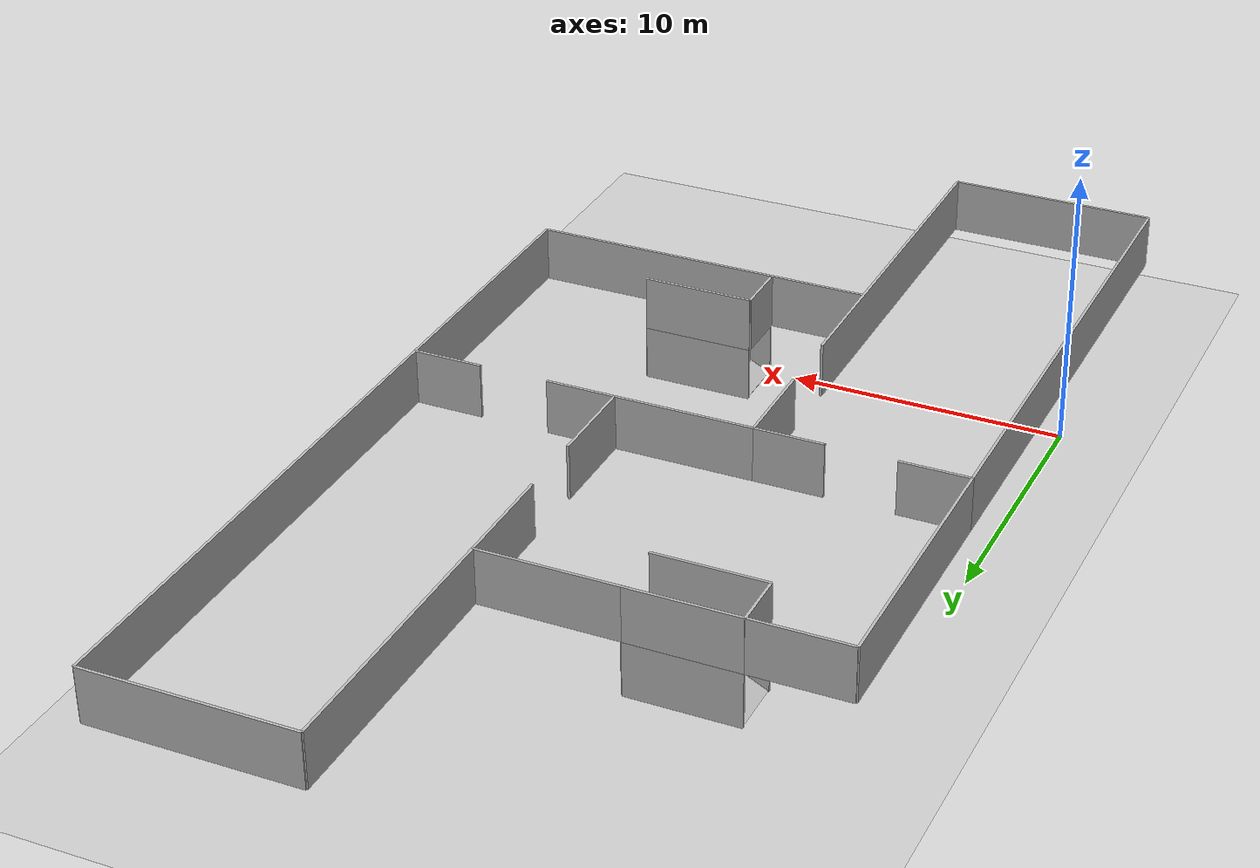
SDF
<sdf version="1.7">
 <world name="default">
  <model name="ground_plane">
   <static>1</static>
   <link name="link">
    <collision name="collision">
     <geometry><plane><normal>0 0 1</normal><size>100 100</size></plane></geometry>
     <surface><friction><ode><mu>100</mu><mu2>50</mu2></ode></friction></surface>
    </collision>
    <visual name="visual">
     <cast_shadows>0</cast_shadows>
     <geometry><plane><normal>0 0 1</normal><size>100 100</size></plane></geometry>
     <material>
      <script><uri>file://media/materials/scripts/gazebo.material</uri><name>Gazebo/Grey</name></script>
     </material>
    </visual>
   </link>
  </model>
  <model name="multi_room_ramp">
   <pose>13.0158 0.989533 -0.010377 0 -0 0</pose>
   <static>1</static>
   <link name="left">
    <visual name="box_visual">
     <pose>0 1 1 0 -0 0</pose>
     <geometry>
      <mesh>
       <uri>model://gazebo_worlds_cdt/models/multi_room_ramp/meshes/wall_box.dae</uri>
       <scale>4 0.1 2</scale>
      </mesh>
     </geometry>
    </visual>
    <collision name="box_collision">
     <pose>0 1 1 0 -0 0</pose>
     <geometry><box><size>4 0.1 2</size></box></geometry>
    </collision>
   </link>
   <link name="right">
    <visual name="box_visual">
     <pose>0 -1 1 0 -0 0</pose>
     <geometry>
      <mesh>
       <uri>model://gazebo_worlds_cdt/models/multi_room_ramp/meshes/wall_box.dae</uri>
       <scale>4 0.1 2</scale>
      </mesh>
     </geometry>
    </visual>
    <collision name="box_collision">
     <pose>0 -1 1 0 -0 0</pose>
     <geometry><box><size>4 0.1 2</size></box></geometry>
    </collision>
   </link>
   <link name="endblock">
    <visual name="box_visual">
     <pose>2 0 1 0 -0 0</pose>
     <geometry>
      <mesh>
       <uri>model://gazebo_worlds_cdt/models/multi_room_ramp/meshes/wall_box.dae</uri>
       <scale>0.1 2 2</scale>
      </mesh>
     </geometry>
    </visual>
    <collision name="box_collision">
     <pose>2 0 1 0 -0 0</pose>
     <geometry><box><size>0.1 2 2</size></box></geometry>
    </collision>
   </link>
   <link name="slope">
    <visual name="box_visual">
     <pose>0 0 1 0 1.1 0</pose>
     <geometry>
      <mesh>
       <uri>model://gazebo_worlds_cdt/models/multi_room_ramp/meshes/floor.dae</uri>
       <scale>0.1 2 4.4</scale>
      </mesh>
     </geometry>
    </visual>
    <collision name="box_collision">
     <pose>0 0 1 0 1.1 0</pose>
     <geometry><box><size>0.1 2 4.4</size></box></geometry>
    </collision>
   </link>
   <link name="endblock_upper_guard">
    <visual name="box_visual">
     <pose>-2 0 3 0 -0 0</pose>
     <geometry>
      <mesh>
       <uri>model://gazebo_worlds_cdt/models/multi_room_ramp/meshes/wall_box.dae</uri>
       <scale>0.1 2 2</scale>
      </mesh>
     </geometry>
    </visual>
    <collision name="box_collision">
     <pose>-2 0 3 0 -0 0</pose>
     <geometry><box><size>0.1 2 2</size></box></geometry>
    </collision>
   </link>
   <link name="left_upper_guard">
    <visual name="box_visual">
     <pose>0 1 3 0 -0 0</pose>
     <geometry>
      <mesh>
       <uri>model://gazebo_worlds_cdt/models/multi_room_ramp/meshes/wall_box.dae</uri>
       <scale>4 0.1 2</scale>
      </mesh>
     </geometry>
    </visual>
    <collision name="box_collision">
     <pose>0 1 3 0 -0 0</pose>
     <geometry><box><size>4 0.1 2</size></box></geometry>
    </collision>
   </link>
   <link name="right_upper_guard">
    <visual name="box_visual">
     <pose>0 -1 3 0 -0 0</pose>
     <geometry>
      <mesh>
       <uri>model://gazebo_worlds_cdt/models/multi_room_ramp/meshes/wall_box.dae</uri>
       <scale>4 0.1 2</scale>
      </mesh>
     </geometry>
    </visual>
    <collision name="box_collision">
     <pose>0 -1 3 0 -0 0</pose>
     <geometry><box><size>4 0.1 2</size></box></geometry>
    </collision>
   </link>
  </model>
  <model name="multi_room_ramp_0">
   <pose>5.52608 19.0181 0.010645 0 -0 0</pose>
   <static>1</static>
   <link name="left">
    <visual name="box_visual">
     <pose>0 1 1 0 -0 0</pose>
     <geometry>
      <mesh>
       <uri>model://gazebo_worlds_cdt/models/multi_room_ramp/meshes/wall_box.dae</uri>
       <scale>4 0.1 2</scale>
      </mesh>
     </geometry>
    </visual>
    <collision name="box_collision">
     <pose>0 1 1 0 -0 0</pose>
     <geometry><box><size>4 0.1 2</size></box></geometry>
    </collision>
   </link>
   <link name="right">
    <visual name="box_visual">
     <pose>0 -1 1 0 -0 0</pose>
     <geometry>
      <mesh>
       <uri>model://gazebo_worlds_cdt/models/multi_room_ramp/meshes/wall_box.dae</uri>
       <scale>4 0.1 2</scale>
      </mesh>
     </geometry>
    </visual>
    <collision name="box_collision">
     <pose>0 -1 1 0 -0 0</pose>
     <geometry><box><size>4 0.1 2</size></box></geometry>
    </collision>
   </link>
   <link name="endblock">
    <visual name="box_visual">
     <pose>2 0 1 0 -0 0</pose>
     <geometry>
      <mesh>
       <uri>model://gazebo_worlds_cdt/models/multi_room_ramp/meshes/wall_box.dae</uri>
       <scale>0.1 2 2</scale>
      </mesh>
     </geometry>
    </visual>
    <collision name="box_collision">
     <pose>2 0 1 0 -0 0</pose>
     <geometry><box><size>0.1 2 2</size></box></geometry>
    </collision>
   </link>
   <link name="slope">
    <visual name="box_visual">
     <pose>0 0 1 0 1.1 0</pose>
     <geometry>
      <mesh>
       <uri>model://gazebo_worlds_cdt/models/multi_room_ramp/meshes/floor.dae</uri>
       <scale>0.1 2 4.4</scale>
      </mesh>
     </geometry>
    </visual>
    <collision name="box_collision">
     <pose>0 0 1 0 1.1 0</pose>
     <geometry><box><size>0.1 2 4.4</size></box></geometry>
    </collision>
   </link>
   <link name="endblock_upper_guard">
    <visual name="box_visual">
     <pose>-2 0 3 0 -0 0</pose>
     <geometry>
      <mesh>
       <uri>model://gazebo_worlds_cdt/models/multi_room_ramp/meshes/wall_box.dae</uri>
       <scale>0.1 2 2</scale>
      </mesh>
     </geometry>
    </visual>
    <collision name="box_collision">
     <pose>-2 0 3 0 -0 0</pose>
     <geometry><box><size>0.1 2 2</size></box></geometry>
    </collision>
   </link>
   <link name="left_upper_guard">
    <visual name="box_visual">
     <pose>0 1 3 0 -0 0</pose>
     <geometry>
      <mesh>
       <uri>model://gazebo_worlds_cdt/models/multi_room_ramp/meshes/wall_box.dae</uri>
       <scale>4 0.1 2</scale>
      </mesh>
     </geometry>
    </visual>
    <collision name="box_collision">
     <pose>0 1 3 0 -0 0</pose>
     <geometry><box><size>4 0.1 2</size></box></geometry>
    </collision>
   </link>
   <link name="right_upper_guard">
    <visual name="box_visual">
     <pose>0 -1 3 0 -0 0</pose>
     <geometry>
      <mesh>
       <uri>model://gazebo_worlds_cdt/models/multi_room_ramp/meshes/wall_box.dae</uri>
       <scale>4 0.1 2</scale>
      </mesh>
     </geometry>
    </visual>
    <collision name="box_collision">
     <pose>0 -1 3 0 -0 0</pose>
     <geometry><box><size>4 0.1 2</size></box></geometry>
    </collision>
   </link>
  </model>
  <model name="multi_room_0">
   <pose>0 0 2 0 -0 0</pose>
   <static>1</static>
   <link name="right">
    <visual name="box_visual">
     <pose>3.75 -10 1 0 -0 0</pose>
     <geometry>
      <mesh>
       <uri>model://gazebo_worlds_cdt/models/multi_room/meshes/wall_box.dae</uri>
       <scale>7.5 0.1 2</scale>
      </mesh>
     </geometry>
    </visual>
    <collision name="box_collision">
     <pose>3.75 -10 1 0 -0 0</pose>
     <geometry><box><size>7.5 0.1 2</size></box></geometry>
    </collision>
   </link>
   <link name="left1">
    <visual name="box_visual">
     <pose>1.25 10 1 0 -0 0</pose>
     <geometry>
      <mesh>
       <uri>model://gazebo_worlds_cdt/models/multi_room/meshes/wall_box.dae</uri>
       <scale>2.5 0.1 2</scale>
      </mesh>
     </geometry>
    </visual>
    <collision name="box_collision">
     <pose>1.25 10 1 0 -0 0</pose>
     <geometry><box><size>2.5 0.1 2</size></box></geometry>
    </collision>
   </link>
   <link name="left2">
    <visual name="box_visual">
     <pose>6.25 10 1 0 -0 0</pose>
     <geometry>
      <mesh>
       <uri>model://gazebo_worlds_cdt/models/multi_room/meshes/wall_box.dae</uri>
       <scale>2.5 0.1 2</scale>
      </mesh>
     </geometry>
    </visual>
    <collision name="box_collision">
     <pose>6.25 10 1 0 -0 0</pose>
     <geometry><box><size>2.5 0.1 2</size></box></geometry>
    </collision>
   </link>
   <link name="bot1">
    <visual name="box_visual">
     <pose>0 0 1 0 -0 0</pose>
     <geometry>
      <mesh><uri>model://gazebo_worlds_cdt/models/multi_room/meshes/wall_box.dae</uri><scale>0.1 20 2</scale></mesh>
     </geometry>
    </visual>
    <collision name="box_collision">
     <pose>0 0 1 0 -0 0</pose>
     <geometry><box><size>0.1 20 2</size></box></geometry>
    </collision>
   </link>
   <link name="top1">
    <visual name="box_visual">
     <pose>7.5 8.25 1 0 -0 0</pose>
     <geometry>
      <mesh>
       <uri>model://gazebo_worlds_cdt/models/multi_room/meshes/wall_box.dae</uri>
       <scale>0.1 3.5 2</scale>
      </mesh>
     </geometry>
    </visual>
    <collision name="box_collision">
     <pose>7.5 8.25 1 0 -0 0</pose>
     <geometry><box><size>0.1 3.5 2</size></box></geometry>
    </collision>
   </link>
   <link name="top2">
    <visual name="box_visual">
     <pose>7.5 -3 1 0 -0 0</pose>
     <geometry>
      <mesh><uri>model://gazebo_worlds_cdt/models/multi_room/meshes/wall_box.dae</uri><scale>0.1 14 2</scale></mesh>
     </geometry>
    </visual>
    <collision name="box_collision">
     <pose>7.5 -3 1 0 -0 0</pose>
     <geometry><box><size>0.1 14 2</size></box></geometry>
    </collision>
   </link>
   <link name="bl_bottom1">
    <visual name="box_visual">
     <pose>0 15 1 0 -0 0</pose>
     <geometry>
      <mesh><uri>model://gazebo_worlds_cdt/models/multi_room/meshes/wall_box.dae</uri><scale>0.1 10 2</scale></mesh>
     </geometry>
    </visual>
    <collision name="box_collision">
     <pose>0 15 1 0 -0 0</pose>
     <geometry><box><size>0.1 10 2</size></box></geometry>
    </collision>
   </link>
   <link name="bl_left">
    <visual name="box_visual">
     <pose>6.25 20 1 0 -0 0</pose>
     <geometry>
      <mesh>
       <uri>model://gazebo_worlds_cdt/models/multi_room/meshes/wall_box.dae</uri>
       <scale>12.5 0.1 2</scale>
      </mesh>
     </geometry>
    </visual>
    <collision name="box_collision">
     <pose>6.25 20 1 0 -0 0</pose>
     <geometry><box><size>12.5 0.1 2</size></box></geometry>
    </collision>
   </link>
   <link name="bl_right">
    <visual name="box_visual">
     <pose>10 10 1 0 -0 0</pose>
     <geometry>
      <mesh><uri>model://gazebo_worlds_cdt/models/multi_room/meshes/wall_box.dae</uri><scale>5 0.1 2</scale></mesh>
     </geometry>
    </visual>
    <collision name="box_collision">
     <pose>10 10 1 0 -0 0</pose>
     <geometry><box><size>5 0.1 2</size></box></geometry>
    </collision>
   </link>
   <link name="bl_top1">
    <visual name="box_visual">
     <pose>12.5 11.75 1 0 -0 0</pose>
     <geometry>
      <mesh>
       <uri>model://gazebo_worlds_cdt/models/multi_room/meshes/wall_box.dae</uri>
       <scale>0.1 3.5 2</scale>
      </mesh>
     </geometry>
    </visual>
    <collision name="box_collision">
     <pose>12.5 11.75 1 0 -0 0</pose>
     <geometry><box><size>0.1 3.5 2</size></box></geometry>
    </collision>
   </link>
   <link name="bl_top2">
    <visual name="box_visual">
     <pose>12.5 18 1 0 -0 0</pose>
     <geometry>
      <mesh><uri>model://gazebo_worlds_cdt/models/multi_room/meshes/wall_box.dae</uri><scale>0.1 4 2</scale></mesh>
     </geometry>
    </visual>
    <collision name="box_collision">
     <pose>12.5 18 1 0 -0 0</pose>
     <geometry><box><size>0.1 4 2</size></box></geometry>
    </collision>
   </link>
   <link name="tr_top1">
    <visual name="box_visual">
     <pose>20 5 1 0 -0 0</pose>
     <geometry>
      <mesh><uri>model://gazebo_worlds_cdt/models/multi_room/meshes/wall_box.dae</uri><scale>0.1 10 2</scale></mesh>
     </geometry>
    </visual>
    <collision name="box_collision">
     <pose>20 5 1 0 -0 0</pose>
     <geometry><box><size>0.1 10 2</size></box></geometry>
    </collision>
   </link>
   <link name="tr_right">
    <visual name="box_visual">
     <pose>13.75 0 1 0 -0 0</pose>
     <geometry>
      <mesh>
       <uri>model://gazebo_worlds_cdt/models/multi_room/meshes/wall_box.dae</uri>
       <scale>12.5 0.1 2</scale>
      </mesh>
     </geometry>
    </visual>
    <collision name="box_collision">
     <pose>13.75 0 1 0 -0 0</pose>
     <geometry><box><size>12.5 0.1 2</size></box></geometry>
    </collision>
   </link>
   <link name="tr_left1">
    <visual name="box_visual">
     <pose>13.75 10 1 0 -0 0</pose>
     <geometry>
      <mesh>
       <uri>model://gazebo_worlds_cdt/models/multi_room/meshes/wall_box.dae</uri>
       <scale>2.5 0.1 2</scale>
      </mesh>
     </geometry>
    </visual>
    <collision name="box_collision">
     <pose>13.75 10 1 0 -0 0</pose>
     <geometry><box><size>2.5 0.1 2</size></box></geometry>
    </collision>
   </link>
   <link name="tr_left2">
    <visual name="box_visual">
     <pose>18.75 10 1 0 -0 0</pose>
     <geometry>
      <mesh>
       <uri>model://gazebo_worlds_cdt/models/multi_room/meshes/wall_box.dae</uri>
       <scale>2.5 0.1 2</scale>
      </mesh>
     </geometry>
    </visual>
    <collision name="box_collision">
     <pose>18.75 10 1 0 -0 0</pose>
     <geometry><box><size>2.5 0.1 2</size></box></geometry>
    </collision>
   </link>
   <link name="tl_top">
    <visual name="box_visual">
     <pose>20 20 1 0 -0 0</pose>
     <geometry>
      <mesh><uri>model://gazebo_worlds_cdt/models/multi_room/meshes/wall_box.dae</uri><scale>0.1 20 2</scale></mesh>
     </geometry>
    </visual>
    <collision name="box_collision">
     <pose>20 20 1 0 -0 0</pose>
     <geometry><box><size>0.1 20 2</size></box></geometry>
    </collision>
   </link>
   <link name="tl_left">
    <visual name="box_visual">
     <pose>16.25 30 1 0 -0 0</pose>
     <geometry>
      <mesh>
       <uri>model://gazebo_worlds_cdt/models/multi_room/meshes/wall_box.dae</uri>
       <scale>7.5 0.1 2</scale>
      </mesh>
     </geometry>
    </visual>
    <collision name="box_collision">
     <pose>16.25 30 1 0 -0 0</pose>
     <geometry><box><size>7.5 0.1 2</size></box></geometry>
    </collision>
   </link>
   <link name="tl_bottom">
    <visual name="box_visual">
     <pose>12.5 25 1 0 -0 0</pose>
     <geometry>
      <mesh><uri>model://gazebo_worlds_cdt/models/multi_room/meshes/wall_box.dae</uri><scale>0.1 10 2</scale></mesh>
     </geometry>
    </visual>
    <collision name="box_collision">
     <pose>12.5 25 1 0 -0 0</pose>
     <geometry><box><size>0.1 10 2</size></box></geometry>
    </collision>
   </link>
  </model>
 </world>
</sdf>
